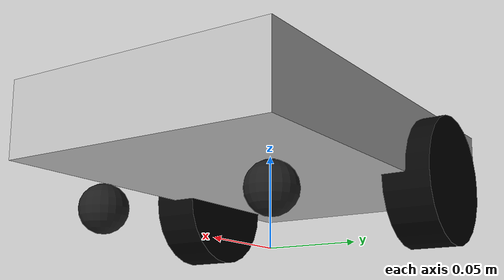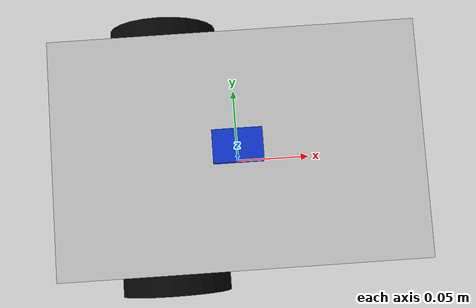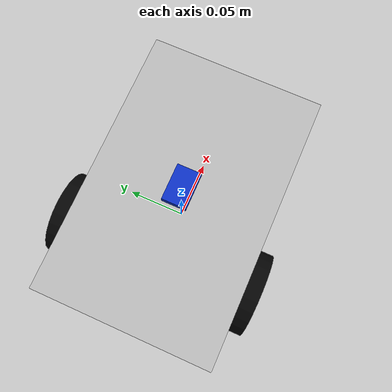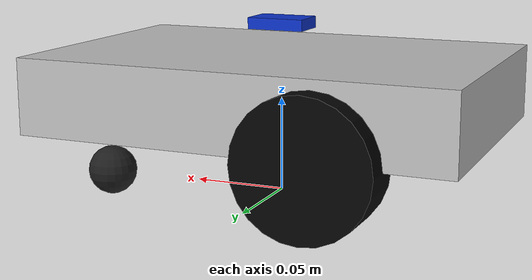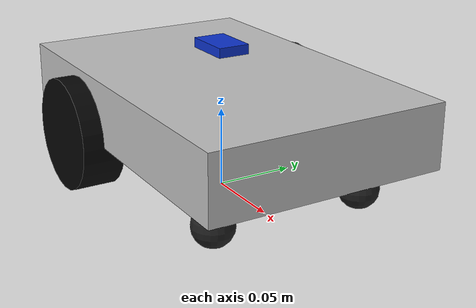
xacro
<?xml version="1.0"?>
<robot xmlns:xacro="http://www.ros.org/wiki/xacro" name="yahboom_2wd">
  <xacro:arg name="robot_name" default="yahboom_2wd"/>
  <xacro:arg name="wheel_radius" default="0.035"/>
  <xacro:arg name="wheel_separation" default="0.148"/>
  <xacro:arg name="chassis_length" default="0.228"/>
  <xacro:arg name="chassis_width" default="0.148"/>
  <xacro:arg name="chassis_height" default="0.040"/>

  <xacro:property name="wheel_radius" value="$(arg wheel_radius)"/>
  <xacro:property name="wheel_separation" value="$(arg wheel_separation)"/>
  <xacro:property name="chassis_length" value="$(arg chassis_length)"/>
  <xacro:property name="chassis_width" value="$(arg chassis_width)"/>
  <xacro:property name="chassis_height" value="$(arg chassis_height)"/>
  <xacro:property name="wheel_width" value="0.026"/>
  <xacro:property name="drive_x" value="-0.045"/>
  <xacro:property name="caster_x" value="0.075"/>

  <material name="dark_gray"><color rgba="0.12 0.12 0.12 1.0"/></material>
  <material name="silver"><color rgba="0.75 0.75 0.75 1.0"/></material>
  <material name="black"><color rgba="0.02 0.02 0.02 1.0"/></material>
  <material name="blue"><color rgba="0.05 0.2 0.8 1.0"/></material>

  <link name="base_footprint"/>

  <joint name="base_footprint_joint" type="fixed">
    <parent link="base_footprint"/>
    <child link="base_link"/>
    <origin xyz="0 0 ${wheel_radius}" rpy="0 0 0"/>
  </joint>

  <link name="base_link">
    <visual>
      <origin xyz="0 0 ${chassis_height/2.0}" rpy="0 0 0"/>
      <geometry><box size="${chassis_length} ${chassis_width} ${chassis_height}"/></geometry>
      <material name="silver"/>
    </visual>
    <collision>
      <origin xyz="0 0 ${chassis_height/2.0}" rpy="0 0 0"/>
      <geometry><box size="${chassis_length} ${chassis_width} ${chassis_height}"/></geometry>
    </collision>
    <inertial>
      <origin xyz="0 0 ${chassis_height/2.0}" rpy="0 0 0"/>
      <mass value="8.0"/>
      <inertia ixx="0.038" ixy="0" ixz="0" iyy="0.045" iyz="0" izz="0.052"/>
    </inertial>
  </link>

  <xacro:macro name="drive_wheel" params="side y">
    <link name="${side}_wheel_link">
      <visual>
        <origin xyz="0 0 0" rpy="1.57079632679 0 0"/>
        <geometry><cylinder radius="${wheel_radius}" length="${wheel_width}"/></geometry>
        <material name="black"/>
      </visual>
      <collision>
        <origin xyz="0 0 0" rpy="1.57079632679 0 0"/>
        <geometry><cylinder radius="${wheel_radius}" length="${wheel_width}"/></geometry>
      </collision>
      <inertial>
        <mass value="0.20"/>
        <inertia ixx="0.00015" ixy="0" ixz="0" iyy="0.00015" iyz="0" izz="0.00015"/>
      </inertial>
    </link>
    <joint name="${side}_wheel_joint" type="continuous">
      <parent link="base_link"/>
      <child link="${side}_wheel_link"/>
      <origin xyz="${drive_x} ${y} 0" rpy="0 0 0"/>
      <axis xyz="0 1 0"/>
    </joint>
  </xacro:macro>

  <xacro:drive_wheel side="left" y="${wheel_separation/2.0}"/>
  <xacro:drive_wheel side="right" y="${-wheel_separation/2.0}"/>

  <xacro:macro name="caster" params="side y">
    <link name="${side}_front_caster_link">
      <visual>
        <origin xyz="0 0 0" rpy="0 0 0"/>
        <geometry><sphere radius="0.0125"/></geometry>
        <material name="dark_gray"/>
      </visual>
      <collision>
        <origin xyz="0 0 0" rpy="0 0 0"/>
        <geometry><sphere radius="0.0125"/></geometry>
      </collision>
      <inertial>
        <mass value="0.03"/>
        <inertia ixx="0.00001" ixy="0" ixz="0" iyy="0.00001" iyz="0" izz="0.00001"/>
      </inertial>
    </link>
    <joint name="${side}_front_caster_joint" type="fixed">
      <parent link="base_link"/>
      <child link="${side}_front_caster_link"/>
      <origin xyz="${caster_x} ${y} -0.020" rpy="0 0 0"/>
    </joint>
  </xacro:macro>

  <xacro:caster side="left" y="${chassis_width/2.0 - 0.025}"/>
  <xacro:caster side="right" y="${-chassis_width/2.0 + 0.025}"/>

  <link name="imu_link">
    <visual>
      <origin xyz="0 0 0" rpy="0 0 0"/>
      <geometry><box size="0.030 0.020 0.006"/></geometry>
      <material name="blue"/>
    </visual>
  </link>
  <joint name="imu_joint" type="fixed">
    <parent link="base_link"/>
    <child link="imu_link"/>
    <origin xyz="0.000 0.000 0.055" rpy="0 0 0"/>
  </joint>
</robot>
